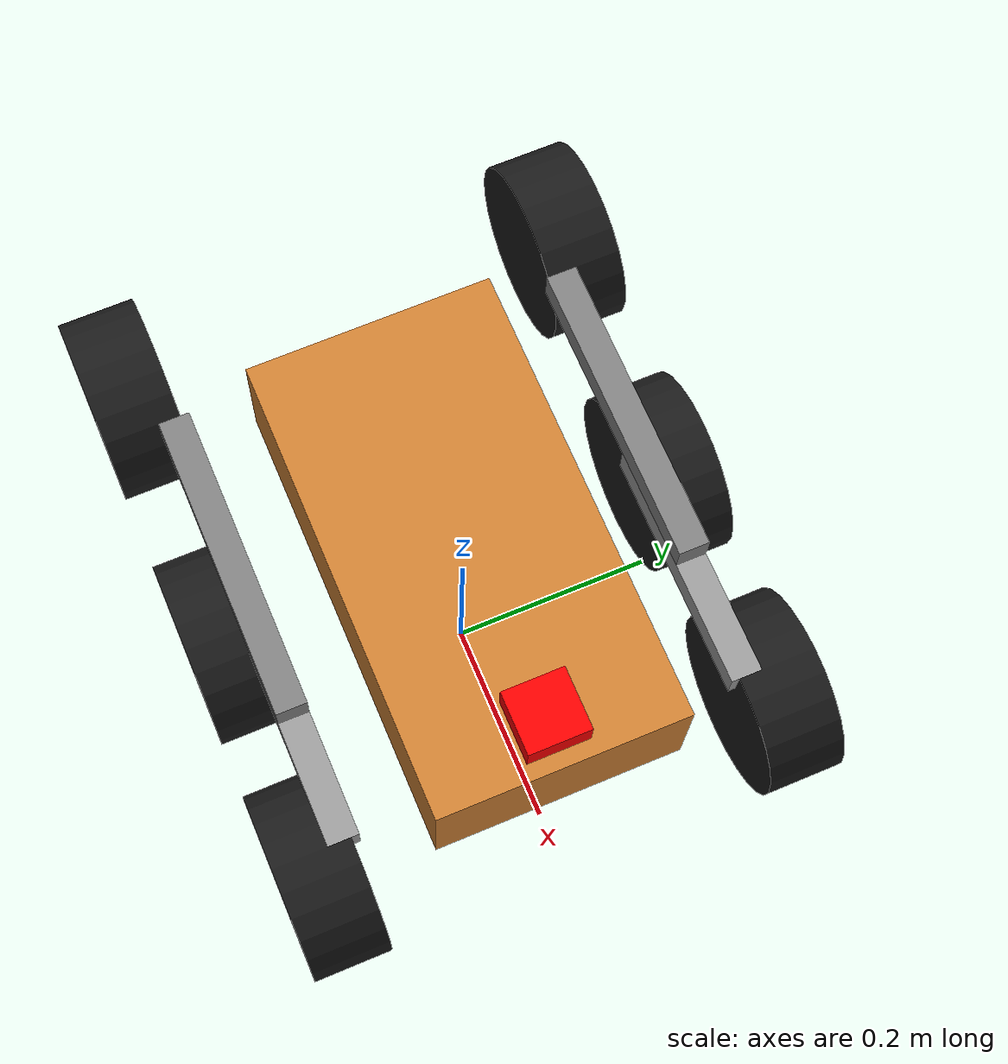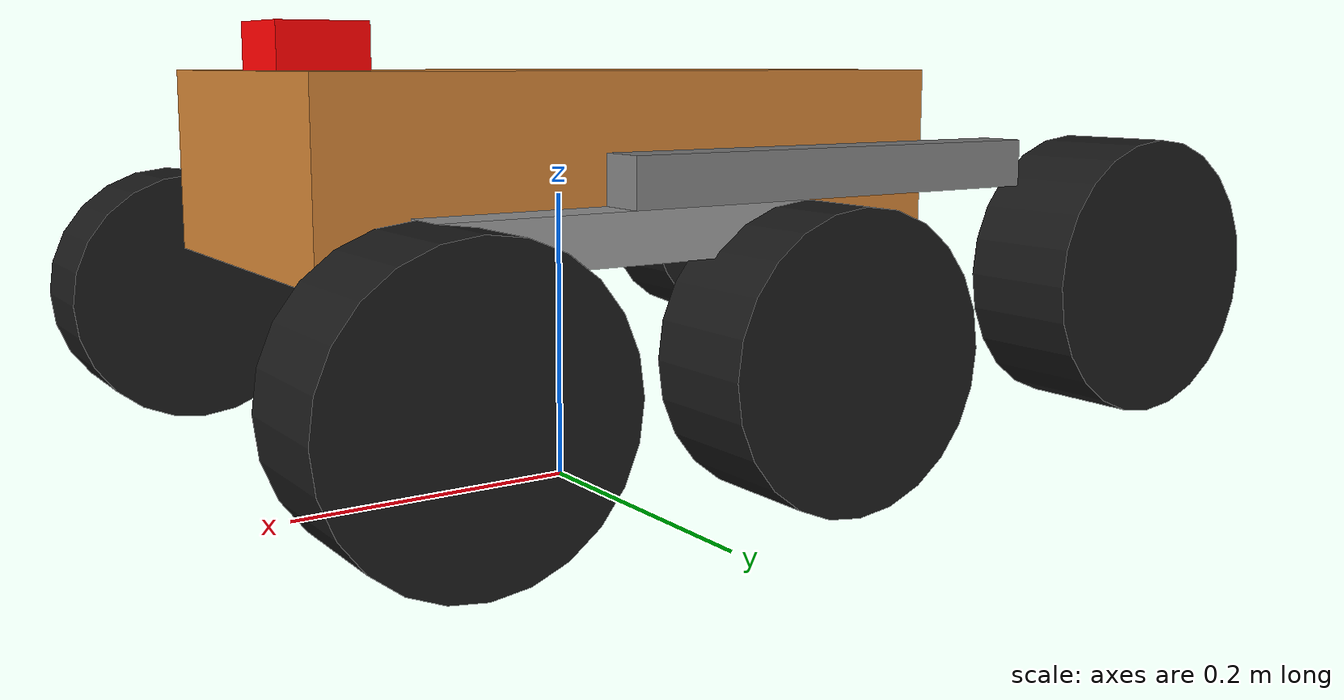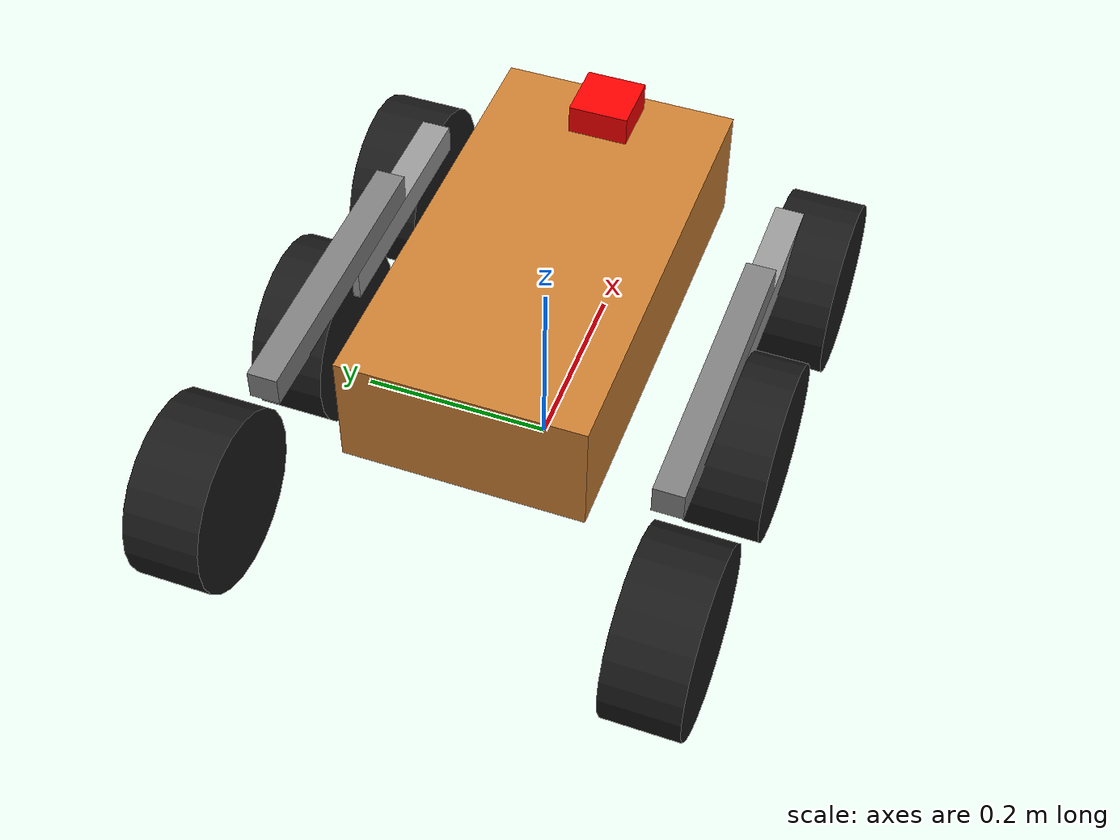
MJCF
<?xml version="1.0"?>
<mujoco model="rocker_bogie_large_robot">
  <compiler angle="degree" coordinate="local" inertiafromgeom="true"/>
  <option timestep="0.002" gravity="0 0 -9.81"/>

  <default>
    <joint armature="0.01" damping="0.5"/>
    <geom friction="1.5" solimp="0.9 0.95 0.001 0.5 2" solref="0.02 1"/>
    <motor ctrllimited="true" ctrlrange="-1.0 1.0"/>
  </default>

  <worldbody>
    <body name="base_link" pos="0 0 0.225">
      <freejoint/>
      <geom type="box" size="0.225 0.12 0.06" rgba="0.8 0.5 0.2 1" mass="9.0"/>
      <geom type="box" pos="0.18 0 0.06" size="0.03 0.03 0.03" rgba="1 0 0 1" mass="0.02"/>

      <body name="left_rocker" pos="-0.075 0.195 0">
        <joint name="left_rocker_joint" type="hinge" axis="0 1 0" range="-30 30" damping="2.0"/>
        <geom type="box" size="0.15 0.015 0.015" rgba="0.5 0.5 0.5 1" mass="1.1"/>

        <body name="left_wheel_rear" pos="-0.225 0.03 -0.075" zaxis="0 1 0">
          <joint name="left_wheel_rear_joint" type="hinge" axis="0 0 1"/>
          <geom type="cylinder" size="0.09 0.0375" rgba="0.1 0.1 0.1 1" mass="1.1" friction="2.0"/>
        </body>

        <body name="left_bogie" pos="0.15 0 -0.03">
          <joint name="left_bogie_joint" type="hinge" axis="0 1 0" range="-45 45" damping="1.0"/>
          <geom type="box" size="0.12 0.015 0.015" rgba="0.6 0.6 0.6 1" mass="0.7"/>

          <body name="left_wheel_middle" pos="-0.12 0.03 -0.075" zaxis="0 1 0">
            <joint name="left_wheel_middle_joint" type="hinge" axis="0 0 1"/>
            <geom type="cylinder" size="0.09 0.0375" rgba="0.1 0.1 0.1 1" mass="1.1" friction="2.0"/>
          </body>

          <body name="left_wheel_front" pos="0.12 0.03 -0.075" zaxis="0 1 0">
            <joint name="left_wheel_front_joint" type="hinge" axis="0 0 1"/>
            <geom type="cylinder" size="0.09 0.0375" rgba="0.1 0.1 0.1 1" mass="1.1" friction="2.0"/>
          </body>
        </body>
      </body>

      <body name="right_rocker" pos="-0.075 -0.195 0">
        <joint name="right_rocker_joint" type="hinge" axis="0 1 0" range="-30 30" damping="2.0"/>
        <geom type="box" size="0.15 0.015 0.015" rgba="0.5 0.5 0.5 1" mass="1.1"/>

        <body name="right_wheel_rear" pos="-0.225 -0.03 -0.075" zaxis="0 1 0">
          <joint name="right_wheel_rear_joint" type="hinge" axis="0 0 1"/>
          <geom type="cylinder" size="0.09 0.0375" rgba="0.1 0.1 0.1 1" mass="1.1" friction="2.0"/>
        </body>

        <body name="right_bogie" pos="0.15 0 -0.03">
          <joint name="right_bogie_joint" type="hinge" axis="0 1 0" range="-45 45" damping="1.0"/>
          <geom type="box" size="0.12 0.015 0.015" rgba="0.6 0.6 0.6 1" mass="0.7"/>

          <body name="right_wheel_middle" pos="-0.12 -0.03 -0.075" zaxis="0 1 0">
            <joint name="right_wheel_middle_joint" type="hinge" axis="0 0 1"/>
            <geom type="cylinder" size="0.09 0.0375" rgba="0.1 0.1 0.1 1" mass="1.1" friction="2.0"/>
          </body>

          <body name="right_wheel_front" pos="0.12 -0.03 -0.075" zaxis="0 1 0">
            <joint name="right_wheel_front_joint" type="hinge" axis="0 0 1"/>
            <geom type="cylinder" size="0.09 0.0375" rgba="0.1 0.1 0.1 1" mass="1.1" friction="2.0"/>
          </body>
        </body>
      </body>

    </body>
  </worldbody>

  <actuator>
    <motor name="fl_motor" joint="left_wheel_front_joint" gear="90"/>
    <motor name="ml_motor" joint="left_wheel_middle_joint" gear="90"/>
    <motor name="rl_motor" joint="left_wheel_rear_joint" gear="150"/>  <!-- 後輪強化 -->

    <motor name="fr_motor" joint="right_wheel_front_joint" gear="90"/>
    <motor name="mr_motor" joint="right_wheel_middle_joint" gear="90"/>
    <motor name="rr_motor" joint="right_wheel_rear_joint" gear="150"/>  <!-- 後輪強化 -->
  </actuator>
</mujoco>
